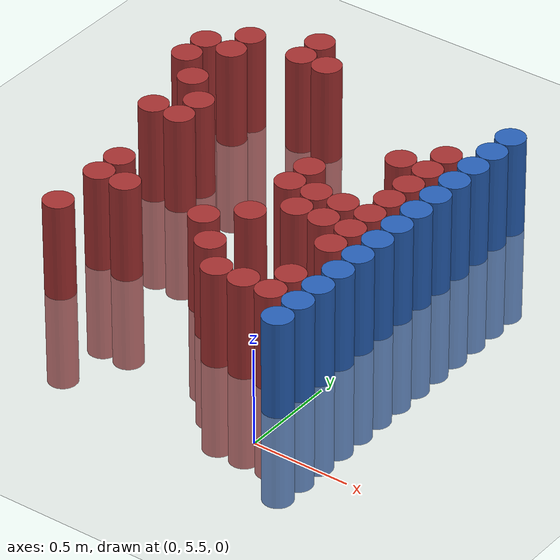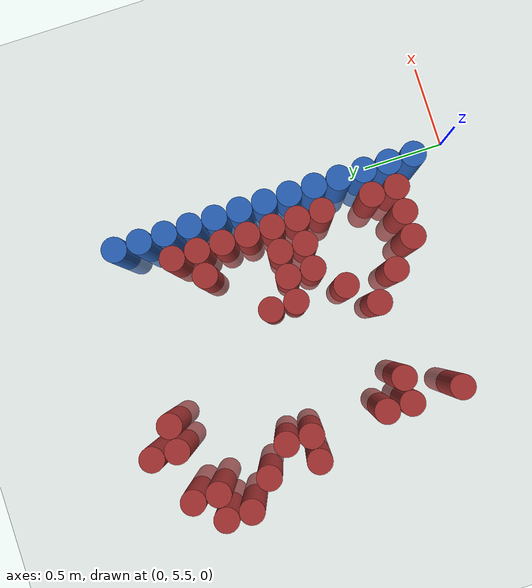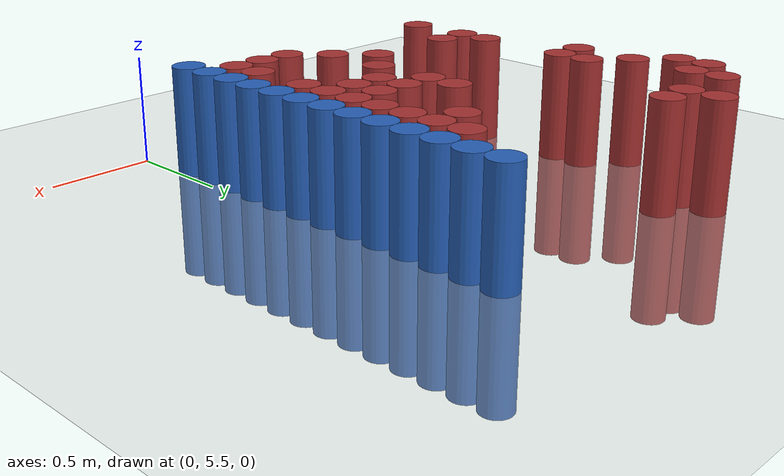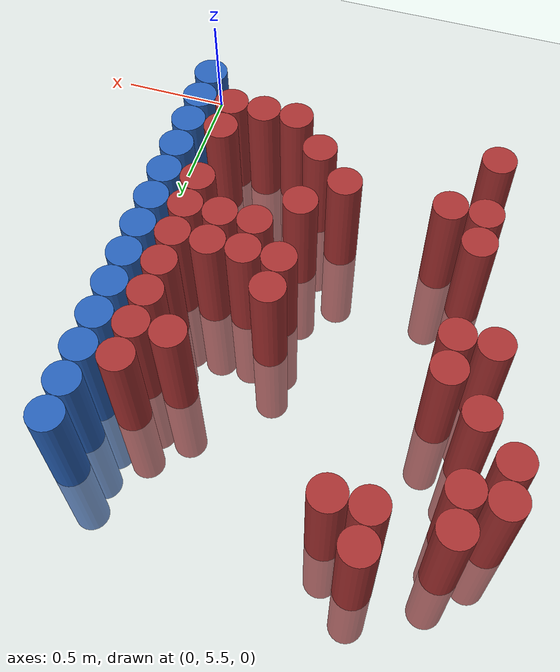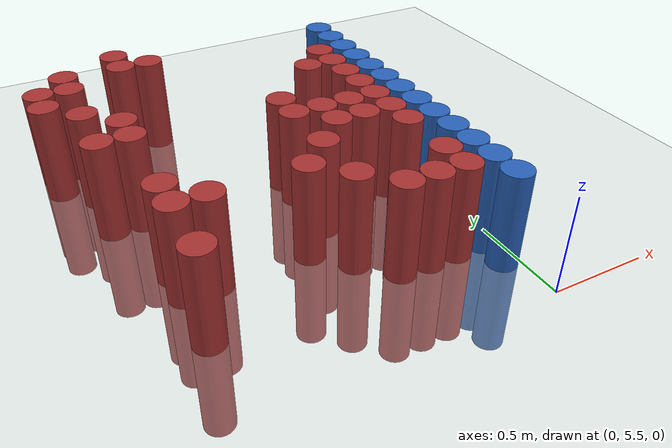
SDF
<sdf version="1.6">
 <world name="default">
  <model name="ground_plane">
   <static>1</static>
   <link name="link">
    <collision name="collision">
     <geometry><plane><normal>0 0 1</normal><size>100 100</size></plane></geometry>
     <surface><friction><ode><mu>100</mu><mu2>50</mu2></ode></friction></surface>
    </collision>
    <visual name="visual">
     <cast_shadows>0</cast_shadows>
     <geometry><plane><normal>0 0 1</normal><size>100 100</size></plane></geometry>
     <material>
      <script><uri>file://media/materials/scripts/gazebo.material</uri><name>Gazebo/Grey</name></script>
     </material>
    </visual>
   </link>
  </model>
  <model name="unit_cylinder_220">
   <static>1</static>
   <pose>-1.725000 7.275000 0.000000 0.000000 0.000000 0.000000</pose>
   <link name="link">
    <inertial>
     <mass>1</mass>
     <inertia><ixx>0.145833</ixx><ixy>0</ixy><ixz>0</ixz><iyy>0.145833</iyy><iyz>0</iyz><izz>0.125</izz></inertia>
    </inertial>
    <collision name="collision">
     <geometry><cylinder><radius>0.075000</radius><length>1</length></cylinder></geometry>
    </collision>
    <visual name="visual">
     <geometry><cylinder><radius>0.075000</radius><length>1</length></cylinder></geometry>
     <material>
      <ambient>0.648000 0.192000 0.192000 1</ambient>
      <diffuse>0.648000 0.192000 0.192000 1</diffuse>
     </material>
     <material>
      <script><name>Gazebo/Grey</name><uri>file://media/materials/scripts/gazebo.material</uri></script>
     </material>
    </visual>
   </link>
  </model>
  <model name="unit_cylinder_221">
   <static>1</static>
   <pose>-1.725000 7.425000 0.000000 0.000000 0.000000 0.000000</pose>
   <link name="link">
    <inertial>
     <mass>1</mass>
     <inertia><ixx>0.145833</ixx><ixy>0</ixy><ixz>0</ixz><iyy>0.145833</iyy><iyz>0</iyz><izz>0.125</izz></inertia>
    </inertial>
    <collision name="collision">
     <geometry><cylinder><radius>0.075000</radius><length>1</length></cylinder></geometry>
    </collision>
    <visual name="visual">
     <geometry><cylinder><radius>0.075000</radius><length>1</length></cylinder></geometry>
     <material>
      <ambient>0.648000 0.192000 0.192000 1</ambient>
      <diffuse>0.648000 0.192000 0.192000 1</diffuse>
     </material>
     <material>
      <script><name>Gazebo/Grey</name><uri>file://media/materials/scripts/gazebo.material</uri></script>
     </material>
    </visual>
   </link>
  </model>
  <model name="unit_cylinder_225">
   <static>1</static>
   <pose>-1.575000 6.825000 0.000000 0.000000 0.000000 0.000000</pose>
   <link name="link">
    <inertial>
     <mass>1</mass>
     <inertia><ixx>0.145833</ixx><ixy>0</ixy><ixz>0</ixz><iyy>0.145833</iyy><iyz>0</iyz><izz>0.125</izz></inertia>
    </inertial>
    <collision name="collision">
     <geometry><cylinder><radius>0.075000</radius><length>1</length></cylinder></geometry>
    </collision>
    <visual name="visual">
     <geometry><cylinder><radius>0.075000</radius><length>1</length></cylinder></geometry>
     <material>
      <ambient>0.648000 0.192000 0.192000 1</ambient>
      <diffuse>0.648000 0.192000 0.192000 1</diffuse>
     </material>
     <material>
      <script><name>Gazebo/Grey</name><uri>file://media/materials/scripts/gazebo.material</uri></script>
     </material>
    </visual>
   </link>
  </model>
  <model name="unit_cylinder_226">
   <static>1</static>
   <pose>-1.575000 7.125000 0.000000 0.000000 0.000000 0.000000</pose>
   <link name="link">
    <inertial>
     <mass>1</mass>
     <inertia><ixx>0.145833</ixx><ixy>0</ixy><ixz>0</ixz><iyy>0.145833</iyy><iyz>0</iyz><izz>0.125</izz></inertia>
    </inertial>
    <collision name="collision">
     <geometry><cylinder><radius>0.075000</radius><length>1</length></cylinder></geometry>
    </collision>
    <visual name="visual">
     <geometry><cylinder><radius>0.075000</radius><length>1</length></cylinder></geometry>
     <material>
      <ambient>0.648000 0.192000 0.192000 1</ambient>
      <diffuse>0.648000 0.192000 0.192000 1</diffuse>
     </material>
     <material>
      <script><name>Gazebo/Grey</name><uri>file://media/materials/scripts/gazebo.material</uri></script>
     </material>
    </visual>
   </link>
  </model>
  <model name="unit_cylinder_227">
   <static>1</static>
   <pose>-1.575000 7.425000 0.000000 0.000000 0.000000 0.000000</pose>
   <link name="link">
    <inertial>
     <mass>1</mass>
     <inertia><ixx>0.145833</ixx><ixy>0</ixy><ixz>0</ixz><iyy>0.145833</iyy><iyz>0</iyz><izz>0.125</izz></inertia>
    </inertial>
    <collision name="collision">
     <geometry><cylinder><radius>0.075000</radius><length>1</length></cylinder></geometry>
    </collision>
    <visual name="visual">
     <geometry><cylinder><radius>0.075000</radius><length>1</length></cylinder></geometry>
     <material>
      <ambient>0.648000 0.192000 0.192000 1</ambient>
      <diffuse>0.648000 0.192000 0.192000 1</diffuse>
     </material>
     <material>
      <script><name>Gazebo/Grey</name><uri>file://media/materials/scripts/gazebo.material</uri></script>
     </material>
    </visual>
   </link>
  </model>
  <model name="unit_cylinder_228">
   <static>1</static>
   <pose>-1.575000 7.575000 0.000000 0.000000 0.000000 0.000000</pose>
   <link name="link">
    <inertial>
     <mass>1</mass>
     <inertia><ixx>0.145833</ixx><ixy>0</ixy><ixz>0</ixz><iyy>0.145833</iyy><iyz>0</iyz><izz>0.125</izz></inertia>
    </inertial>
    <collision name="collision">
     <geometry><cylinder><radius>0.075000</radius><length>1</length></cylinder></geometry>
    </collision>
    <visual name="visual">
     <geometry><cylinder><radius>0.075000</radius><length>1</length></cylinder></geometry>
     <material>
      <ambient>0.648000 0.192000 0.192000 1</ambient>
      <diffuse>0.648000 0.192000 0.192000 1</diffuse>
     </material>
     <material>
      <script><name>Gazebo/Grey</name><uri>file://media/materials/scripts/gazebo.material</uri></script>
     </material>
    </visual>
   </link>
  </model>
  <model name="unit_cylinder_233">
   <static>1</static>
   <pose>-1.425000 5.925000 0.000000 0.000000 0.000000 0.000000</pose>
   <link name="link">
    <inertial>
     <mass>1</mass>
     <inertia><ixx>0.145833</ixx><ixy>0</ixy><ixz>0</ixz><iyy>0.145833</iyy><iyz>0</iyz><izz>0.125</izz></inertia>
    </inertial>
    <collision name="collision">
     <geometry><cylinder><radius>0.075000</radius><length>1</length></cylinder></geometry>
    </collision>
    <visual name="visual">
     <geometry><cylinder><radius>0.075000</radius><length>1</length></cylinder></geometry>
     <material>
      <ambient>0.648000 0.192000 0.192000 1</ambient>
      <diffuse>0.648000 0.192000 0.192000 1</diffuse>
     </material>
     <material>
      <script><name>Gazebo/Grey</name><uri>file://media/materials/scripts/gazebo.material</uri></script>
     </material>
    </visual>
   </link>
  </model>
  <model name="unit_cylinder_234">
   <static>1</static>
   <pose>-1.425000 6.225000 0.000000 0.000000 0.000000 0.000000</pose>
   <link name="link">
    <inertial>
     <mass>1</mass>
     <inertia><ixx>0.145833</ixx><ixy>0</ixy><ixz>0</ixz><iyy>0.145833</iyy><iyz>0</iyz><izz>0.125</izz></inertia>
    </inertial>
    <collision name="collision">
     <geometry><cylinder><radius>0.075000</radius><length>1</length></cylinder></geometry>
    </collision>
    <visual name="visual">
     <geometry><cylinder><radius>0.075000</radius><length>1</length></cylinder></geometry>
     <material>
      <ambient>0.648000 0.192000 0.192000 1</ambient>
      <diffuse>0.648000 0.192000 0.192000 1</diffuse>
     </material>
     <material>
      <script><name>Gazebo/Grey</name><uri>file://media/materials/scripts/gazebo.material</uri></script>
     </material>
    </visual>
   </link>
  </model>
  <model name="unit_cylinder_235">
   <static>1</static>
   <pose>-1.425000 6.375000 0.000000 0.000000 0.000000 0.000000</pose>
   <link name="link">
    <inertial>
     <mass>1</mass>
     <inertia><ixx>0.145833</ixx><ixy>0</ixy><ixz>0</ixz><iyy>0.145833</iyy><iyz>0</iyz><izz>0.125</izz></inertia>
    </inertial>
    <collision name="collision">
     <geometry><cylinder><radius>0.075000</radius><length>1</length></cylinder></geometry>
    </collision>
    <visual name="visual">
     <geometry><cylinder><radius>0.075000</radius><length>1</length></cylinder></geometry>
     <material>
      <ambient>0.648000 0.192000 0.192000 1</ambient>
      <diffuse>0.648000 0.192000 0.192000 1</diffuse>
     </material>
     <material>
      <script><name>Gazebo/Grey</name><uri>file://media/materials/scripts/gazebo.material</uri></script>
     </material>
    </visual>
   </link>
  </model>
  <model name="unit_cylinder_236">
   <static>1</static>
   <pose>-1.425000 6.825000 0.000000 0.000000 0.000000 0.000000</pose>
   <link name="link">
    <inertial>
     <mass>1</mass>
     <inertia><ixx>0.145833</ixx><ixy>0</ixy><ixz>0</ixz><iyy>0.145833</iyy><iyz>0</iyz><izz>0.125</izz></inertia>
    </inertial>
    <collision name="collision">
     <geometry><cylinder><radius>0.075000</radius><length>1</length></cylinder></geometry>
    </collision>
    <visual name="visual">
     <geometry><cylinder><radius>0.075000</radius><length>1</length></cylinder></geometry>
     <material>
      <ambient>0.648000 0.192000 0.192000 1</ambient>
      <diffuse>0.648000 0.192000 0.192000 1</diffuse>
     </material>
     <material>
      <script><name>Gazebo/Grey</name><uri>file://media/materials/scripts/gazebo.material</uri></script>
     </material>
    </visual>
   </link>
  </model>
  <model name="unit_cylinder_237">
   <static>1</static>
   <pose>-1.425000 6.975000 0.000000 0.000000 0.000000 0.000000</pose>
   <link name="link">
    <inertial>
     <mass>1</mass>
     <inertia><ixx>0.145833</ixx><ixy>0</ixy><ixz>0</ixz><iyy>0.145833</iyy><iyz>0</iyz><izz>0.125</izz></inertia>
    </inertial>
    <collision name="collision">
     <geometry><cylinder><radius>0.075000</radius><length>1</length></cylinder></geometry>
    </collision>
    <visual name="visual">
     <geometry><cylinder><radius>0.075000</radius><length>1</length></cylinder></geometry>
     <material>
      <ambient>0.648000 0.192000 0.192000 1</ambient>
      <diffuse>0.648000 0.192000 0.192000 1</diffuse>
     </material>
     <material>
      <script><name>Gazebo/Grey</name><uri>file://media/materials/scripts/gazebo.material</uri></script>
     </material>
    </visual>
   </link>
  </model>
  <model name="unit_cylinder_242">
   <static>1</static>
   <pose>-1.275000 6.225000 0.000000 0.000000 0.000000 0.000000</pose>
   <link name="link">
    <inertial>
     <mass>1</mass>
     <inertia><ixx>0.145833</ixx><ixy>0</ixy><ixz>0</ixz><iyy>0.145833</iyy><iyz>0</iyz><izz>0.125</izz></inertia>
    </inertial>
    <collision name="collision">
     <geometry><cylinder><radius>0.075000</radius><length>1</length></cylinder></geometry>
    </collision>
    <visual name="visual">
     <geometry><cylinder><radius>0.075000</radius><length>1</length></cylinder></geometry>
     <material>
      <ambient>0.648000 0.192000 0.192000 1</ambient>
      <diffuse>0.648000 0.192000 0.192000 1</diffuse>
     </material>
     <material>
      <script><name>Gazebo/Grey</name><uri>file://media/materials/scripts/gazebo.material</uri></script>
     </material>
    </visual>
   </link>
  </model>
  <model name="unit_cylinder_243">
   <static>1</static>
   <pose>-1.275000 7.575000 0.000000 0.000000 0.000000 0.000000</pose>
   <link name="link">
    <inertial>
     <mass>1</mass>
     <inertia><ixx>0.145833</ixx><ixy>0</ixy><ixz>0</ixz><iyy>0.145833</iyy><iyz>0</iyz><izz>0.125</izz></inertia>
    </inertial>
    <collision name="collision">
     <geometry><cylinder><radius>0.075000</radius><length>1</length></cylinder></geometry>
    </collision>
    <visual name="visual">
     <geometry><cylinder><radius>0.075000</radius><length>1</length></cylinder></geometry>
     <material>
      <ambient>0.648000 0.192000 0.192000 1</ambient>
      <diffuse>0.648000 0.192000 0.192000 1</diffuse>
     </material>
     <material>
      <script><name>Gazebo/Grey</name><uri>file://media/materials/scripts/gazebo.material</uri></script>
     </material>
    </visual>
   </link>
  </model>
  <model name="unit_cylinder_244">
   <static>1</static>
   <pose>-1.275000 7.725000 0.000000 0.000000 0.000000 0.000000</pose>
   <link name="link">
    <inertial>
     <mass>1</mass>
     <inertia><ixx>0.145833</ixx><ixy>0</ixy><ixz>0</ixz><iyy>0.145833</iyy><iyz>0</iyz><izz>0.125</izz></inertia>
    </inertial>
    <collision name="collision">
     <geometry><cylinder><radius>0.075000</radius><length>1</length></cylinder></geometry>
    </collision>
    <visual name="visual">
     <geometry><cylinder><radius>0.075000</radius><length>1</length></cylinder></geometry>
     <material>
      <ambient>0.648000 0.192000 0.192000 1</ambient>
      <diffuse>0.648000 0.192000 0.192000 1</diffuse>
     </material>
     <material>
      <script><name>Gazebo/Grey</name><uri>file://media/materials/scripts/gazebo.material</uri></script>
     </material>
    </visual>
   </link>
  </model>
  <model name="unit_cylinder_247">
   <static>1</static>
   <pose>-1.125000 7.575000 0.000000 0.000000 0.000000 0.000000</pose>
   <link name="link">
    <inertial>
     <mass>1</mass>
     <inertia><ixx>0.145833</ixx><ixy>0</ixy><ixz>0</ixz><iyy>0.145833</iyy><iyz>0</iyz><izz>0.125</izz></inertia>
    </inertial>
    <collision name="collision">
     <geometry><cylinder><radius>0.075000</radius><length>1</length></cylinder></geometry>
    </collision>
    <visual name="visual">
     <geometry><cylinder><radius>0.075000</radius><length>1</length></cylinder></geometry>
     <material>
      <ambient>0.648000 0.192000 0.192000 1</ambient>
      <diffuse>0.648000 0.192000 0.192000 1</diffuse>
     </material>
     <material>
      <script><name>Gazebo/Grey</name><uri>file://media/materials/scripts/gazebo.material</uri></script>
     </material>
    </visual>
   </link>
  </model>
  <model name="unit_cylinder_255">
   <static>1</static>
   <pose>-0.825000 6.225000 0.000000 0.000000 0.000000 0.000000</pose>
   <link name="link">
    <inertial>
     <mass>1</mass>
     <inertia><ixx>0.145833</ixx><ixy>0</ixy><ixz>0</ixz><iyy>0.145833</iyy><iyz>0</iyz><izz>0.125</izz></inertia>
    </inertial>
    <collision name="collision">
     <geometry><cylinder><radius>0.075000</radius><length>1</length></cylinder></geometry>
    </collision>
    <visual name="visual">
     <geometry><cylinder><radius>0.075000</radius><length>1</length></cylinder></geometry>
     <material>
      <ambient>0.648000 0.192000 0.192000 1</ambient>
      <diffuse>0.648000 0.192000 0.192000 1</diffuse>
     </material>
     <material>
      <script><name>Gazebo/Grey</name><uri>file://media/materials/scripts/gazebo.material</uri></script>
     </material>
    </visual>
   </link>
  </model>
  <model name="unit_cylinder_260">
   <static>1</static>
   <pose>-0.675000 6.075000 0.000000 0.000000 0.000000 0.000000</pose>
   <link name="link">
    <inertial>
     <mass>1</mass>
     <inertia><ixx>0.145833</ixx><ixy>0</ixy><ixz>0</ixz><iyy>0.145833</iyy><iyz>0</iyz><izz>0.125</izz></inertia>
    </inertial>
    <collision name="collision">
     <geometry><cylinder><radius>0.075000</radius><length>1</length></cylinder></geometry>
    </collision>
    <visual name="visual">
     <geometry><cylinder><radius>0.075000</radius><length>1</length></cylinder></geometry>
     <material>
      <ambient>0.648000 0.192000 0.192000 1</ambient>
      <diffuse>0.648000 0.192000 0.192000 1</diffuse>
     </material>
     <material>
      <script><name>Gazebo/Grey</name><uri>file://media/materials/scripts/gazebo.material</uri></script>
     </material>
    </visual>
   </link>
  </model>
  <model name="unit_cylinder_261">
   <static>1</static>
   <pose>-0.675000 6.375000 0.000000 0.000000 0.000000 0.000000</pose>
   <link name="link">
    <inertial>
     <mass>1</mass>
     <inertia><ixx>0.145833</ixx><ixy>0</ixy><ixz>0</ixz><iyy>0.145833</iyy><iyz>0</iyz><izz>0.125</izz></inertia>
    </inertial>
    <collision name="collision">
     <geometry><cylinder><radius>0.075000</radius><length>1</length></cylinder></geometry>
    </collision>
    <visual name="visual">
     <geometry><cylinder><radius>0.075000</radius><length>1</length></cylinder></geometry>
     <material>
      <ambient>0.648000 0.192000 0.192000 1</ambient>
      <diffuse>0.648000 0.192000 0.192000 1</diffuse>
     </material>
     <material>
      <script><name>Gazebo/Grey</name><uri>file://media/materials/scripts/gazebo.material</uri></script>
     </material>
    </visual>
   </link>
  </model>
  <model name="unit_cylinder_262">
   <static>1</static>
   <pose>-0.675000 6.675000 0.000000 0.000000 0.000000 0.000000</pose>
   <link name="link">
    <inertial>
     <mass>1</mass>
     <inertia><ixx>0.145833</ixx><ixy>0</ixy><ixz>0</ixz><iyy>0.145833</iyy><iyz>0</iyz><izz>0.125</izz></inertia>
    </inertial>
    <collision name="collision">
     <geometry><cylinder><radius>0.075000</radius><length>1</length></cylinder></geometry>
    </collision>
    <visual name="visual">
     <geometry><cylinder><radius>0.075000</radius><length>1</length></cylinder></geometry>
     <material>
      <ambient>0.648000 0.192000 0.192000 1</ambient>
      <diffuse>0.648000 0.192000 0.192000 1</diffuse>
     </material>
     <material>
      <script><name>Gazebo/Grey</name><uri>file://media/materials/scripts/gazebo.material</uri></script>
     </material>
    </visual>
   </link>
  </model>
  <model name="unit_cylinder_263">
   <static>1</static>
   <pose>-0.675000 6.825000 0.000000 0.000000 0.000000 0.000000</pose>
   <link name="link">
    <inertial>
     <mass>1</mass>
     <inertia><ixx>0.145833</ixx><ixy>0</ixy><ixz>0</ixz><iyy>0.145833</iyy><iyz>0</iyz><izz>0.125</izz></inertia>
    </inertial>
    <collision name="collision">
     <geometry><cylinder><radius>0.075000</radius><length>1</length></cylinder></geometry>
    </collision>
    <visual name="visual">
     <geometry><cylinder><radius>0.075000</radius><length>1</length></cylinder></geometry>
     <material>
      <ambient>0.648000 0.192000 0.192000 1</ambient>
      <diffuse>0.648000 0.192000 0.192000 1</diffuse>
     </material>
     <material>
      <script><name>Gazebo/Grey</name><uri>file://media/materials/scripts/gazebo.material</uri></script>
     </material>
    </visual>
   </link>
  </model>
  <model name="unit_cylinder_274">
   <static>1</static>
   <pose>-0.525000 5.925000 0.000000 0.000000 0.000000 0.000000</pose>
   <link name="link">
    <inertial>
     <mass>1</mass>
     <inertia><ixx>0.145833</ixx><ixy>0</ixy><ixz>0</ixz><iyy>0.145833</iyy><iyz>0</iyz><izz>0.125</izz></inertia>
    </inertial>
    <collision name="collision">
     <geometry><cylinder><radius>0.075000</radius><length>1</length></cylinder></geometry>
    </collision>
    <visual name="visual">
     <geometry><cylinder><radius>0.075000</radius><length>1</length></cylinder></geometry>
     <material>
      <ambient>0.648000 0.192000 0.192000 1</ambient>
      <diffuse>0.648000 0.192000 0.192000 1</diffuse>
     </material>
     <material>
      <script><name>Gazebo/Grey</name><uri>file://media/materials/scripts/gazebo.material</uri></script>
     </material>
    </visual>
   </link>
  </model>
  <model name="unit_cylinder_275">
   <static>1</static>
   <pose>-0.525000 6.525000 0.000000 0.000000 0.000000 0.000000</pose>
   <link name="link">
    <inertial>
     <mass>1</mass>
     <inertia><ixx>0.145833</ixx><ixy>0</ixy><ixz>0</ixz><iyy>0.145833</iyy><iyz>0</iyz><izz>0.125</izz></inertia>
    </inertial>
    <collision name="collision">
     <geometry><cylinder><radius>0.075000</radius><length>1</length></cylinder></geometry>
    </collision>
    <visual name="visual">
     <geometry><cylinder><radius>0.075000</radius><length>1</length></cylinder></geometry>
     <material>
      <ambient>0.648000 0.192000 0.192000 1</ambient>
      <diffuse>0.648000 0.192000 0.192000 1</diffuse>
     </material>
     <material>
      <script><name>Gazebo/Grey</name><uri>file://media/materials/scripts/gazebo.material</uri></script>
     </material>
    </visual>
   </link>
  </model>
  <model name="unit_cylinder_276">
   <static>1</static>
   <pose>-0.525000 6.675000 0.000000 0.000000 0.000000 0.000000</pose>
   <link name="link">
    <inertial>
     <mass>1</mass>
     <inertia><ixx>0.145833</ixx><ixy>0</ixy><ixz>0</ixz><iyy>0.145833</iyy><iyz>0</iyz><izz>0.125</izz></inertia>
    </inertial>
    <collision name="collision">
     <geometry><cylinder><radius>0.075000</radius><length>1</length></cylinder></geometry>
    </collision>
    <visual name="visual">
     <geometry><cylinder><radius>0.075000</radius><length>1</length></cylinder></geometry>
     <material>
      <ambient>0.648000 0.192000 0.192000 1</ambient>
      <diffuse>0.648000 0.192000 0.192000 1</diffuse>
     </material>
     <material>
      <script><name>Gazebo/Grey</name><uri>file://media/materials/scripts/gazebo.material</uri></script>
     </material>
    </visual>
   </link>
  </model>
  <model name="unit_cylinder_287">
   <static>1</static>
   <pose>-0.375000 5.925000 0.000000 0.000000 0.000000 0.000000</pose>
   <link name="link">
    <inertial>
     <mass>1</mass>
     <inertia><ixx>0.145833</ixx><ixy>0</ixy><ixz>0</ixz><iyy>0.145833</iyy><iyz>0</iyz><izz>0.125</izz></inertia>
    </inertial>
    <collision name="collision">
     <geometry><cylinder><radius>0.075000</radius><length>1</length></cylinder></geometry>
    </collision>
    <visual name="visual">
     <geometry><cylinder><radius>0.075000</radius><length>1</length></cylinder></geometry>
     <material>
      <ambient>0.648000 0.192000 0.192000 1</ambient>
      <diffuse>0.648000 0.192000 0.192000 1</diffuse>
     </material>
     <material>
      <script><name>Gazebo/Grey</name><uri>file://media/materials/scripts/gazebo.material</uri></script>
     </material>
    </visual>
   </link>
  </model>
  <model name="unit_cylinder_288">
   <static>1</static>
   <pose>-0.375000 6.525000 0.000000 0.000000 0.000000 0.000000</pose>
   <link name="link">
    <inertial>
     <mass>1</mass>
     <inertia><ixx>0.145833</ixx><ixy>0</ixy><ixz>0</ixz><iyy>0.145833</iyy><iyz>0</iyz><izz>0.125</izz></inertia>
    </inertial>
    <collision name="collision">
     <geometry><cylinder><radius>0.075000</radius><length>1</length></cylinder></geometry>
    </collision>
    <visual name="visual">
     <geometry><cylinder><radius>0.075000</radius><length>1</length></cylinder></geometry>
     <material>
      <ambient>0.648000 0.192000 0.192000 1</ambient>
      <diffuse>0.648000 0.192000 0.192000 1</diffuse>
     </material>
     <material>
      <script><name>Gazebo/Grey</name><uri>file://media/materials/scripts/gazebo.material</uri></script>
     </material>
    </visual>
   </link>
  </model>
  <model name="unit_cylinder_289">
   <static>1</static>
   <pose>-0.375000 6.675000 0.000000 0.000000 0.000000 0.000000</pose>
   <link name="link">
    <inertial>
     <mass>1</mass>
     <inertia><ixx>0.145833</ixx><ixy>0</ixy><ixz>0</ixz><iyy>0.145833</iyy><iyz>0</iyz><izz>0.125</izz></inertia>
    </inertial>
    <collision name="collision">
     <geometry><cylinder><radius>0.075000</radius><length>1</length></cylinder></geometry>
    </collision>
    <visual name="visual">
     <geometry><cylinder><radius>0.075000</radius><length>1</length></cylinder></geometry>
     <material>
      <ambient>0.648000 0.192000 0.192000 1</ambient>
      <diffuse>0.648000 0.192000 0.192000 1</diffuse>
     </material>
     <material>
      <script><name>Gazebo/Grey</name><uri>file://media/materials/scripts/gazebo.material</uri></script>
     </material>
    </visual>
   </link>
  </model>
  <model name="unit_cylinder_290">
   <static>1</static>
   <pose>-0.375000 7.125000 0.000000 0.000000 0.000000 0.000000</pose>
   <link name="link">
    <inertial>
     <mass>1</mass>
     <inertia><ixx>0.145833</ixx><ixy>0</ixy><ixz>0</ixz><iyy>0.145833</iyy><iyz>0</iyz><izz>0.125</izz></inertia>
    </inertial>
    <collision name="collision">
     <geometry><cylinder><radius>0.075000</radius><length>1</length></cylinder></geometry>
    </collision>
    <visual name="visual">
     <geometry><cylinder><radius>0.075000</radius><length>1</length></cylinder></geometry>
     <material>
      <ambient>0.648000 0.192000 0.192000 1</ambient>
      <diffuse>0.648000 0.192000 0.192000 1</diffuse>
     </material>
     <material>
      <script><name>Gazebo/Grey</name><uri>file://media/materials/scripts/gazebo.material</uri></script>
     </material>
    </visual>
   </link>
  </model>
  <model name="unit_cylinder_297">
   <static>1</static>
   <pose>-0.225000 5.925000 0.000000 0.000000 0.000000 0.000000</pose>
   <link name="link">
    <inertial>
     <mass>1</mass>
     <inertia><ixx>0.145833</ixx><ixy>0</ixy><ixz>0</ixz><iyy>0.145833</iyy><iyz>0</iyz><izz>0.125</izz></inertia>
    </inertial>
    <collision name="collision">
     <geometry><cylinder><radius>0.075000</radius><length>1</length></cylinder></geometry>
    </collision>
    <visual name="visual">
     <geometry><cylinder><radius>0.075000</radius><length>1</length></cylinder></geometry>
     <material>
      <ambient>0.648000 0.192000 0.192000 1</ambient>
      <diffuse>0.648000 0.192000 0.192000 1</diffuse>
     </material>
     <material>
      <script><name>Gazebo/Grey</name><uri>file://media/materials/scripts/gazebo.material</uri></script>
     </material>
    </visual>
   </link>
  </model>
  <model name="unit_cylinder_298">
   <static>1</static>
   <pose>-0.225000 6.075000 0.000000 0.000000 0.000000 0.000000</pose>
   <link name="link">
    <inertial>
     <mass>1</mass>
     <inertia><ixx>0.145833</ixx><ixy>0</ixy><ixz>0</ixz><iyy>0.145833</iyy><iyz>0</iyz><izz>0.125</izz></inertia>
    </inertial>
    <collision name="collision">
     <geometry><cylinder><radius>0.075000</radius><length>1</length></cylinder></geometry>
    </collision>
    <visual name="visual">
     <geometry><cylinder><radius>0.075000</radius><length>1</length></cylinder></geometry>
     <material>
      <ambient>0.648000 0.192000 0.192000 1</ambient>
      <diffuse>0.648000 0.192000 0.192000 1</diffuse>
     </material>
     <material>
      <script><name>Gazebo/Grey</name><uri>file://media/materials/scripts/gazebo.material</uri></script>
     </material>
    </visual>
   </link>
  </model>
  <model name="unit_cylinder_299">
   <static>1</static>
   <pose>-0.225000 6.375000 0.000000 0.000000 0.000000 0.000000</pose>
   <link name="link">
    <inertial>
     <mass>1</mass>
     <inertia><ixx>0.145833</ixx><ixy>0</ixy><ixz>0</ixz><iyy>0.145833</iyy><iyz>0</iyz><izz>0.125</izz></inertia>
    </inertial>
    <collision name="collision">
     <geometry><cylinder><radius>0.075000</radius><length>1</length></cylinder></geometry>
    </collision>
    <visual name="visual">
     <geometry><cylinder><radius>0.075000</radius><length>1</length></cylinder></geometry>
     <material>
      <ambient>0.648000 0.192000 0.192000 1</ambient>
      <diffuse>0.648000 0.192000 0.192000 1</diffuse>
     </material>
     <material>
      <script><name>Gazebo/Grey</name><uri>file://media/materials/scripts/gazebo.material</uri></script>
     </material>
    </visual>
   </link>
  </model>
  <model name="unit_cylinder_300">
   <static>1</static>
   <pose>-0.225000 6.525000 0.000000 0.000000 0.000000 0.000000</pose>
   <link name="link">
    <inertial>
     <mass>1</mass>
     <inertia><ixx>0.145833</ixx><ixy>0</ixy><ixz>0</ixz><iyy>0.145833</iyy><iyz>0</iyz><izz>0.125</izz></inertia>
    </inertial>
    <collision name="collision">
     <geometry><cylinder><radius>0.075000</radius><length>1</length></cylinder></geometry>
    </collision>
    <visual name="visual">
     <geometry><cylinder><radius>0.075000</radius><length>1</length></cylinder></geometry>
     <material>
      <ambient>0.648000 0.192000 0.192000 1</ambient>
      <diffuse>0.648000 0.192000 0.192000 1</diffuse>
     </material>
     <material>
      <script><name>Gazebo/Grey</name><uri>file://media/materials/scripts/gazebo.material</uri></script>
     </material>
    </visual>
   </link>
  </model>
  <model name="unit_cylinder_301">
   <static>1</static>
   <pose>-0.225000 6.675000 0.000000 0.000000 0.000000 0.000000</pose>
   <link name="link">
    <inertial>
     <mass>1</mass>
     <inertia><ixx>0.145833</ixx><ixy>0</ixy><ixz>0</ixz><iyy>0.145833</iyy><iyz>0</iyz><izz>0.125</izz></inertia>
    </inertial>
    <collision name="collision">
     <geometry><cylinder><radius>0.075000</radius><length>1</length></cylinder></geometry>
    </collision>
    <visual name="visual">
     <geometry><cylinder><radius>0.075000</radius><length>1</length></cylinder></geometry>
     <material>
      <ambient>0.648000 0.192000 0.192000 1</ambient>
      <diffuse>0.648000 0.192000 0.192000 1</diffuse>
     </material>
     <material>
      <script><name>Gazebo/Grey</name><uri>file://media/materials/scripts/gazebo.material</uri></script>
     </material>
    </visual>
   </link>
  </model>
  <model name="unit_cylinder_302">
   <static>1</static>
   <pose>-0.225000 6.825000 0.000000 0.000000 0.000000 0.000000</pose>
   <link name="link">
    <inertial>
     <mass>1</mass>
     <inertia><ixx>0.145833</ixx><ixy>0</ixy><ixz>0</ixz><iyy>0.145833</iyy><iyz>0</iyz><izz>0.125</izz></inertia>
    </inertial>
    <collision name="collision">
     <geometry><cylinder><radius>0.075000</radius><length>1</length></cylinder></geometry>
    </collision>
    <visual name="visual">
     <geometry><cylinder><radius>0.075000</radius><length>1</length></cylinder></geometry>
     <material>
      <ambient>0.648000 0.192000 0.192000 1</ambient>
      <diffuse>0.648000 0.192000 0.192000 1</diffuse>
     </material>
     <material>
      <script><name>Gazebo/Grey</name><uri>file://media/materials/scripts/gazebo.material</uri></script>
     </material>
    </visual>
   </link>
  </model>
  <model name="unit_cylinder_303">
   <static>1</static>
   <pose>-0.225000 6.975000 0.000000 0.000000 0.000000 0.000000</pose>
   <link name="link">
    <inertial>
     <mass>1</mass>
     <inertia><ixx>0.145833</ixx><ixy>0</ixy><ixz>0</ixz><iyy>0.145833</iyy><iyz>0</iyz><izz>0.125</izz></inertia>
    </inertial>
    <collision name="collision">
     <geometry><cylinder><radius>0.075000</radius><length>1</length></cylinder></geometry>
    </collision>
    <visual name="visual">
     <geometry><cylinder><radius>0.075000</radius><length>1</length></cylinder></geometry>
     <material>
      <ambient>0.648000 0.192000 0.192000 1</ambient>
      <diffuse>0.648000 0.192000 0.192000 1</diffuse>
     </material>
     <material>
      <script><name>Gazebo/Grey</name><uri>file://media/materials/scripts/gazebo.material</uri></script>
     </material>
    </visual>
   </link>
  </model>
  <model name="unit_cylinder_304">
   <static>1</static>
   <pose>-0.225000 7.125000 0.000000 0.000000 0.000000 0.000000</pose>
   <link name="link">
    <inertial>
     <mass>1</mass>
     <inertia><ixx>0.145833</ixx><ixy>0</ixy><ixz>0</ixz><iyy>0.145833</iyy><iyz>0</iyz><izz>0.125</izz></inertia>
    </inertial>
    <collision name="collision">
     <geometry><cylinder><radius>0.075000</radius><length>1</length></cylinder></geometry>
    </collision>
    <visual name="visual">
     <geometry><cylinder><radius>0.075000</radius><length>1</length></cylinder></geometry>
     <material>
      <ambient>0.648000 0.192000 0.192000 1</ambient>
      <diffuse>0.648000 0.192000 0.192000 1</diffuse>
     </material>
     <material>
      <script><name>Gazebo/Grey</name><uri>file://media/materials/scripts/gazebo.material</uri></script>
     </material>
    </visual>
   </link>
  </model>
  <model name="unit_cylinder_305">
   <static>1</static>
   <pose>-0.225000 7.275000 0.000000 0.000000 0.000000 0.000000</pose>
   <link name="link">
    <inertial>
     <mass>1</mass>
     <inertia><ixx>0.145833</ixx><ixy>0</ixy><ixz>0</ixz><iyy>0.145833</iyy><iyz>0</iyz><izz>0.125</izz></inertia>
    </inertial>
    <collision name="collision">
     <geometry><cylinder><radius>0.075000</radius><length>1</length></cylinder></geometry>
    </collision>
    <visual name="visual">
     <geometry><cylinder><radius>0.075000</radius><length>1</length></cylinder></geometry>
     <material>
      <ambient>0.648000 0.192000 0.192000 1</ambient>
      <diffuse>0.648000 0.192000 0.192000 1</diffuse>
     </material>
     <material>
      <script><name>Gazebo/Grey</name><uri>file://media/materials/scripts/gazebo.material</uri></script>
     </material>
    </visual>
   </link>
  </model>
  <model name="unit_cylinder_315">
   <static>1</static>
   <pose>-0.075000 5.775000 0.000000 0.000000 0.000000 0.000000</pose>
   <link name="link">
    <inertial>
     <mass>1</mass>
     <inertia><ixx>0.145833</ixx><ixy>0</ixy><ixz>0</ixz><iyy>0.145833</iyy><iyz>0</iyz><izz>0.125</izz></inertia>
    </inertial>
    <collision name="collision">
     <geometry><cylinder><radius>0.075000</radius><length>1</length></cylinder></geometry>
    </collision>
    <visual name="visual">
     <geometry><cylinder><radius>0.075000</radius><length>1</length></cylinder></geometry>
     <material>
      <ambient>0.152000 0.379000 0.720000 1</ambient>
      <diffuse>0.152000 0.379000 0.720000 1</diffuse>
     </material>
     <material>
      <script><name>Gazebo/Grey</name><uri>file://media/materials/scripts/gazebo.material</uri></script>
     </material>
    </visual>
   </link>
  </model>
  <model name="unit_cylinder_316">
   <static>1</static>
   <pose>-0.075000 5.925000 0.000000 0.000000 0.000000 0.000000</pose>
   <link name="link">
    <inertial>
     <mass>1</mass>
     <inertia><ixx>0.145833</ixx><ixy>0</ixy><ixz>0</ixz><iyy>0.145833</iyy><iyz>0</iyz><izz>0.125</izz></inertia>
    </inertial>
    <collision name="collision">
     <geometry><cylinder><radius>0.075000</radius><length>1</length></cylinder></geometry>
    </collision>
    <visual name="visual">
     <geometry><cylinder><radius>0.075000</radius><length>1</length></cylinder></geometry>
     <material>
      <ambient>0.152000 0.379000 0.720000 1</ambient>
      <diffuse>0.152000 0.379000 0.720000 1</diffuse>
     </material>
     <material>
      <script><name>Gazebo/Grey</name><uri>file://media/materials/scripts/gazebo.material</uri></script>
     </material>
    </visual>
   </link>
  </model>
  <model name="unit_cylinder_317">
   <static>1</static>
   <pose>-0.075000 6.075000 0.000000 0.000000 0.000000 0.000000</pose>
   <link name="link">
    <inertial>
     <mass>1</mass>
     <inertia><ixx>0.145833</ixx><ixy>0</ixy><ixz>0</ixz><iyy>0.145833</iyy><iyz>0</iyz><izz>0.125</izz></inertia>
    </inertial>
    <collision name="collision">
     <geometry><cylinder><radius>0.075000</radius><length>1</length></cylinder></geometry>
    </collision>
    <visual name="visual">
     <geometry><cylinder><radius>0.075000</radius><length>1</length></cylinder></geometry>
     <material>
      <ambient>0.152000 0.379000 0.720000 1</ambient>
      <diffuse>0.152000 0.379000 0.720000 1</diffuse>
     </material>
     <material>
      <script><name>Gazebo/Grey</name><uri>file://media/materials/scripts/gazebo.material</uri></script>
     </material>
    </visual>
   </link>
  </model>
  <model name="unit_cylinder_318">
   <static>1</static>
   <pose>-0.075000 6.225000 0.000000 0.000000 0.000000 0.000000</pose>
   <link name="link">
    <inertial>
     <mass>1</mass>
     <inertia><ixx>0.145833</ixx><ixy>0</ixy><ixz>0</ixz><iyy>0.145833</iyy><iyz>0</iyz><izz>0.125</izz></inertia>
    </inertial>
    <collision name="collision">
     <geometry><cylinder><radius>0.075000</radius><length>1</length></cylinder></geometry>
    </collision>
    <visual name="visual">
     <geometry><cylinder><radius>0.075000</radius><length>1</length></cylinder></geometry>
     <material>
      <ambient>0.152000 0.379000 0.720000 1</ambient>
      <diffuse>0.152000 0.379000 0.720000 1</diffuse>
     </material>
     <material>
      <script><name>Gazebo/Grey</name><uri>file://media/materials/scripts/gazebo.material</uri></script>
     </material>
    </visual>
   </link>
  </model>
  <model name="unit_cylinder_319">
   <static>1</static>
   <pose>-0.075000 6.375000 0.000000 0.000000 0.000000 0.000000</pose>
   <link name="link">
    <inertial>
     <mass>1</mass>
     <inertia><ixx>0.145833</ixx><ixy>0</ixy><ixz>0</ixz><iyy>0.145833</iyy><iyz>0</iyz><izz>0.125</izz></inertia>
    </inertial>
    <collision name="collision">
     <geometry><cylinder><radius>0.075000</radius><length>1</length></cylinder></geometry>
    </collision>
    <visual name="visual">
     <geometry><cylinder><radius>0.075000</radius><length>1</length></cylinder></geometry>
     <material>
      <ambient>0.152000 0.379000 0.720000 1</ambient>
      <diffuse>0.152000 0.379000 0.720000 1</diffuse>
     </material>
     <material>
      <script><name>Gazebo/Grey</name><uri>file://media/materials/scripts/gazebo.material</uri></script>
     </material>
    </visual>
   </link>
  </model>
  <model name="unit_cylinder_320">
   <static>1</static>
   <pose>-0.075000 6.525000 0.000000 0.000000 0.000000 0.000000</pose>
   <link name="link">
    <inertial>
     <mass>1</mass>
     <inertia><ixx>0.145833</ixx><ixy>0</ixy><ixz>0</ixz><iyy>0.145833</iyy><iyz>0</iyz><izz>0.125</izz></inertia>
    </inertial>
    <collision name="collision">
     <geometry><cylinder><radius>0.075000</radius><length>1</length></cylinder></geometry>
    </collision>
    <visual name="visual">
     <geometry><cylinder><radius>0.075000</radius><length>1</length></cylinder></geometry>
     <material>
      <ambient>0.152000 0.379000 0.720000 1</ambient>
      <diffuse>0.152000 0.379000 0.720000 1</diffuse>
     </material>
     <material>
      <script><name>Gazebo/Grey</name><uri>file://media/materials/scripts/gazebo.material</uri></script>
     </material>
    </visual>
   </link>
  </model>
  <model name="unit_cylinder_321">
   <static>1</static>
   <pose>-0.075000 6.675000 0.000000 0.000000 0.000000 0.000000</pose>
   <link name="link">
    <inertial>
     <mass>1</mass>
     <inertia><ixx>0.145833</ixx><ixy>0</ixy><ixz>0</ixz><iyy>0.145833</iyy><iyz>0</iyz><izz>0.125</izz></inertia>
    </inertial>
    <collision name="collision">
     <geometry><cylinder><radius>0.075000</radius><length>1</length></cylinder></geometry>
    </collision>
    <visual name="visual">
     <geometry><cylinder><radius>0.075000</radius><length>1</length></cylinder></geometry>
     <material>
      <ambient>0.152000 0.379000 0.720000 1</ambient>
      <diffuse>0.152000 0.379000 0.720000 1</diffuse>
     </material>
     <material>
      <script><name>Gazebo/Grey</name><uri>file://media/materials/scripts/gazebo.material</uri></script>
     </material>
    </visual>
   </link>
  </model>
  <model name="unit_cylinder_322">
   <static>1</static>
   <pose>-0.075000 6.825000 0.000000 0.000000 0.000000 0.000000</pose>
   <link name="link">
    <inertial>
     <mass>1</mass>
     <inertia><ixx>0.145833</ixx><ixy>0</ixy><ixz>0</ixz><iyy>0.145833</iyy><iyz>0</iyz><izz>0.125</izz></inertia>
    </inertial>
    <collision name="collision">
     <geometry><cylinder><radius>0.075000</radius><length>1</length></cylinder></geometry>
    </collision>
    <visual name="visual">
     <geometry><cylinder><radius>0.075000</radius><length>1</length></cylinder></geometry>
     <material>
      <ambient>0.152000 0.379000 0.720000 1</ambient>
      <diffuse>0.152000 0.379000 0.720000 1</diffuse>
     </material>
     <material>
      <script><name>Gazebo/Grey</name><uri>file://media/materials/scripts/gazebo.material</uri></script>
     </material>
    </visual>
   </link>
  </model>
  <model name="unit_cylinder_323">
   <static>1</static>
   <pose>-0.075000 6.975000 0.000000 0.000000 0.000000 0.000000</pose>
   <link name="link">
    <inertial>
     <mass>1</mass>
     <inertia><ixx>0.145833</ixx><ixy>0</ixy><ixz>0</ixz><iyy>0.145833</iyy><iyz>0</iyz><izz>0.125</izz></inertia>
    </inertial>
    <collision name="collision">
     <geometry><cylinder><radius>0.075000</radius><length>1</length></cylinder></geometry>
    </collision>
    <visual name="visual">
     <geometry><cylinder><radius>0.075000</radius><length>1</length></cylinder></geometry>
     <material>
      <ambient>0.152000 0.379000 0.720000 1</ambient>
      <diffuse>0.152000 0.379000 0.720000 1</diffuse>
     </material>
     <material>
      <script><name>Gazebo/Grey</name><uri>file://media/materials/scripts/gazebo.material</uri></script>
     </material>
    </visual>
   </link>
  </model>
  <model name="unit_cylinder_324">
   <static>1</static>
   <pose>-0.075000 7.125000 0.000000 0.000000 0.000000 0.000000</pose>
   <link name="link">
    <inertial>
     <mass>1</mass>
     <inertia><ixx>0.145833</ixx><ixy>0</ixy><ixz>0</ixz><iyy>0.145833</iyy><iyz>0</iyz><izz>0.125</izz></inertia>
    </inertial>
    <collision name="collision">
     <geometry><cylinder><radius>0.075000</radius><length>1</length></cylinder></geometry>
    </collision>
    <visual name="visual">
     <geometry><cylinder><radius>0.075000</radius><length>1</length></cylinder></geometry>
     <material>
      <ambient>0.152000 0.379000 0.720000 1</ambient>
      <diffuse>0.152000 0.379000 0.720000 1</diffuse>
     </material>
     <material>
      <script><name>Gazebo/Grey</name><uri>file://media/materials/scripts/gazebo.material</uri></script>
     </material>
    </visual>
   </link>
  </model>
  <model name="unit_cylinder_325">
   <static>1</static>
   <pose>-0.075000 7.275000 0.000000 0.000000 0.000000 0.000000</pose>
   <link name="link">
    <inertial>
     <mass>1</mass>
     <inertia><ixx>0.145833</ixx><ixy>0</ixy><ixz>0</ixz><iyy>0.145833</iyy><iyz>0</iyz><izz>0.125</izz></inertia>
    </inertial>
    <collision name="collision">
     <geometry><cylinder><radius>0.075000</radius><length>1</length></cylinder></geometry>
    </collision>
    <visual name="visual">
     <geometry><cylinder><radius>0.075000</radius><length>1</length></cylinder></geometry>
     <material>
      <ambient>0.152000 0.379000 0.720000 1</ambient>
      <diffuse>0.152000 0.379000 0.720000 1</diffuse>
     </material>
     <material>
      <script><name>Gazebo/Grey</name><uri>file://media/materials/scripts/gazebo.material</uri></script>
     </material>
    </visual>
   </link>
  </model>
  <model name="unit_cylinder_326">
   <static>1</static>
   <pose>-0.075000 7.425000 0.000000 0.000000 0.000000 0.000000</pose>
   <link name="link">
    <inertial>
     <mass>1</mass>
     <inertia><ixx>0.145833</ixx><ixy>0</ixy><ixz>0</ixz><iyy>0.145833</iyy><iyz>0</iyz><izz>0.125</izz></inertia>
    </inertial>
    <collision name="collision">
     <geometry><cylinder><radius>0.075000</radius><length>1</length></cylinder></geometry>
    </collision>
    <visual name="visual">
     <geometry><cylinder><radius>0.075000</radius><length>1</length></cylinder></geometry>
     <material>
      <ambient>0.152000 0.379000 0.720000 1</ambient>
      <diffuse>0.152000 0.379000 0.720000 1</diffuse>
     </material>
     <material>
      <script><name>Gazebo/Grey</name><uri>file://media/materials/scripts/gazebo.material</uri></script>
     </material>
    </visual>
   </link>
  </model>
  <model name="unit_cylinder_327">
   <static>1</static>
   <pose>-0.075000 7.575000 0.000000 0.000000 0.000000 0.000000</pose>
   <link name="link">
    <inertial>
     <mass>1</mass>
     <inertia><ixx>0.145833</ixx><ixy>0</ixy><ixz>0</ixz><iyy>0.145833</iyy><iyz>0</iyz><izz>0.125</izz></inertia>
    </inertial>
    <collision name="collision">
     <geometry><cylinder><radius>0.075000</radius><length>1</length></cylinder></geometry>
    </collision>
    <visual name="visual">
     <geometry><cylinder><radius>0.075000</radius><length>1</length></cylinder></geometry>
     <material>
      <ambient>0.152000 0.379000 0.720000 1</ambient>
      <diffuse>0.152000 0.379000 0.720000 1</diffuse>
     </material>
     <material>
      <script><name>Gazebo/Grey</name><uri>file://media/materials/scripts/gazebo.material</uri></script>
     </material>
    </visual>
   </link>
  </model>
 </world>
</sdf>
